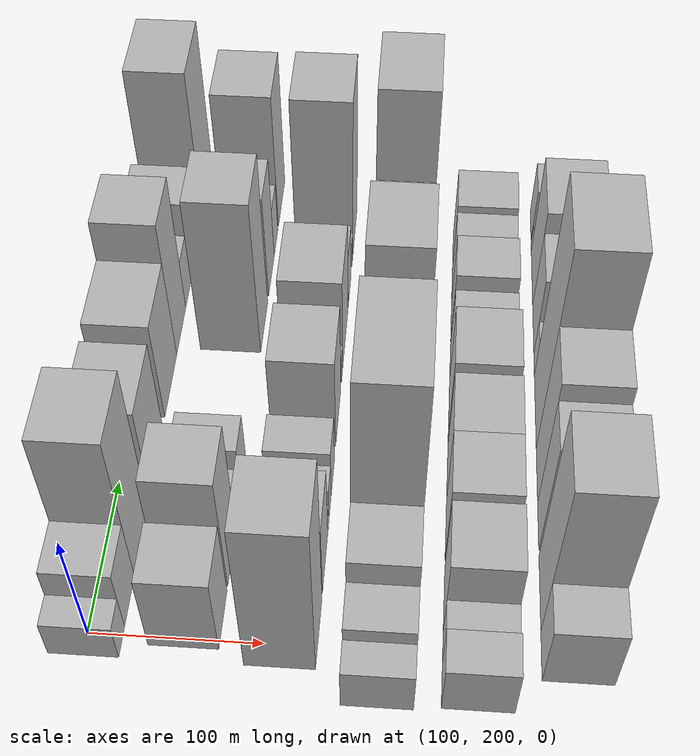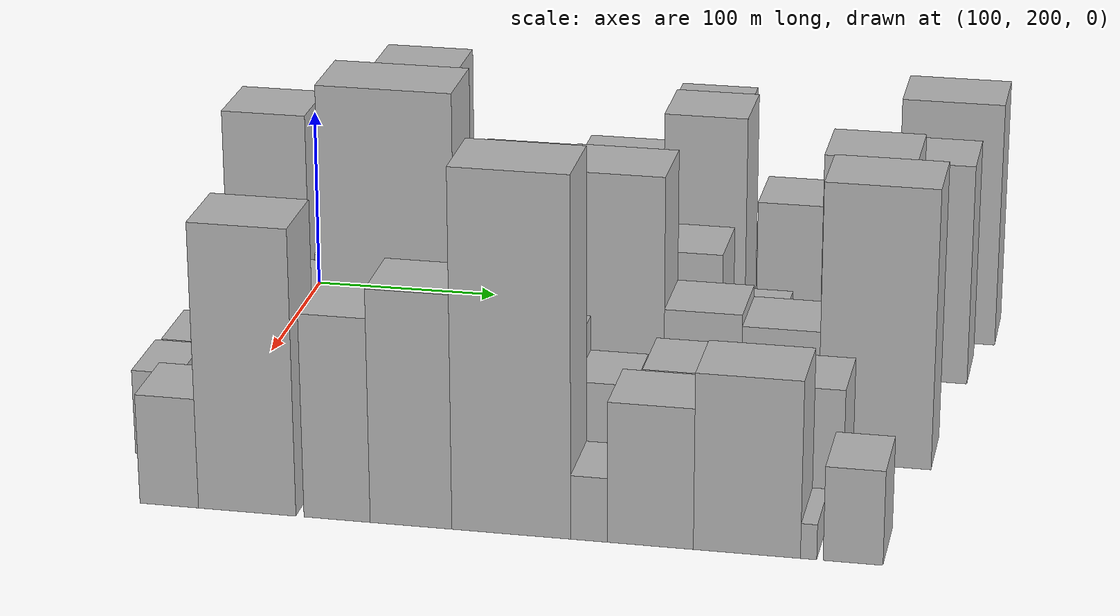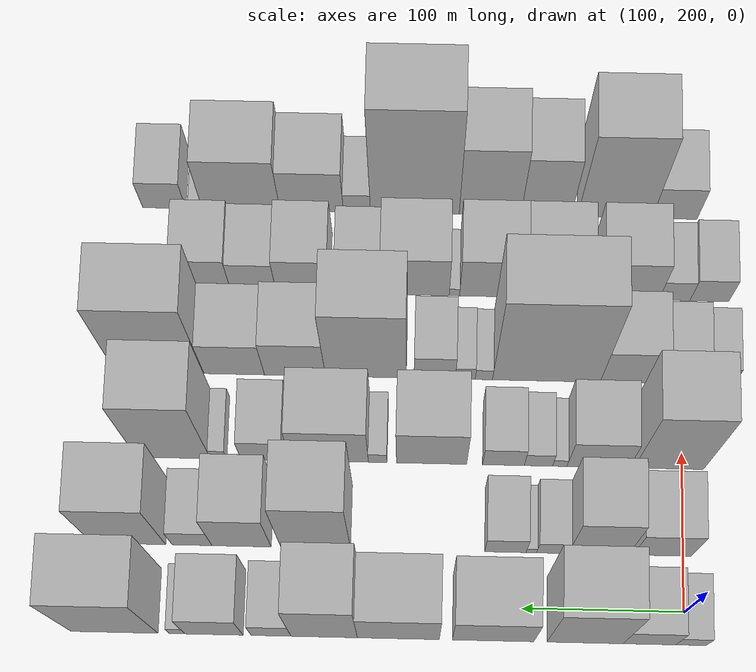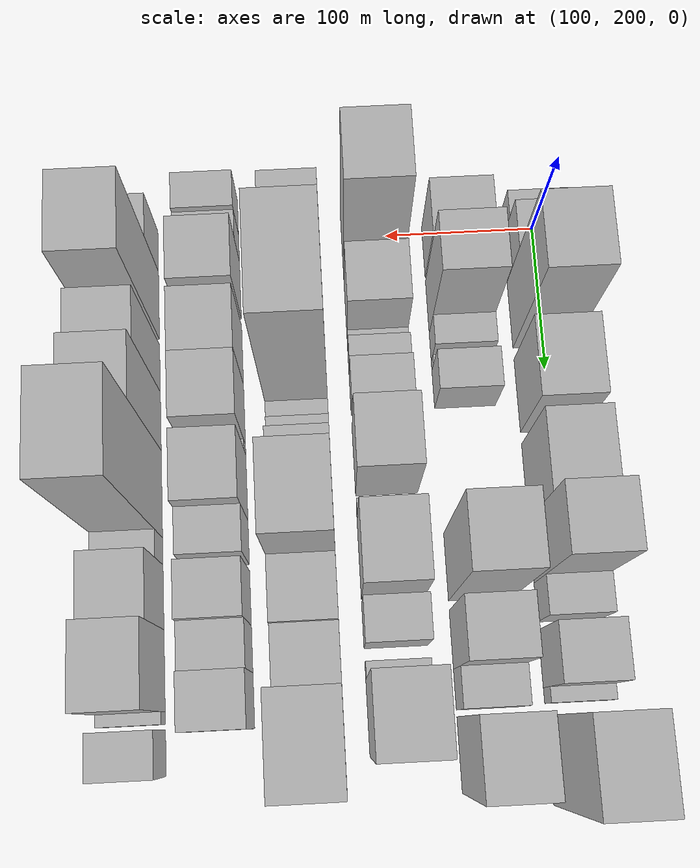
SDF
<sdf version="1.6">
 <world name="default">
  <model name="building_29">
   <static>1</static>
   <pose>100.0000 195.7742 0 0.000000 0.000000 0.000000</pose>
   <link name="link">
    <pose>0 0 16.50 0 0 0</pose>
    <collision name="collision"><geometry><box><size>40.0000 18.7223 33.0000</size></box></geometry></collision>
    <visual name="visual">
     <cast_shadows>0</cast_shadows>
     <geometry><box><size>40.0000 18.7223 33.0000</size></box></geometry>
     <material>
      <script>
       <uri>model://HANNAS_wall/materials/scripts</uri>
       <uri>model://HANNAS_wall/materials/textures</uri>
       <name>vrc/HANNAS_wall</name>
      </script>
     </material>
    </visual>
   </link>
  </model>
  <model name="building_30">
   <static>1</static>
   <pose>100.0000 221.3169 0 0.000000 0.000000 0.000000</pose>
   <link name="link">
    <pose>0 0 28.50 0 0 0</pose>
    <collision name="collision"><geometry><box><size>40.0000 32.3630 57.0000</size></box></geometry></collision>
    <visual name="visual">
     <cast_shadows>0</cast_shadows>
     <geometry><box><size>40.0000 32.3630 57.0000</size></box></geometry>
     <material>
      <script>
       <uri>model://HANNAS_wall/materials/scripts</uri>
       <uri>model://HANNAS_wall/materials/textures</uri>
       <name>vrc/HANNAS_wall</name>
      </script>
     </material>
    </visual>
   </link>
  </model>
  <model name="building_31">
   <static>1</static>
   <pose>100.0000 260.9677 0 0.000000 0.000000 0.000000</pose>
   <link name="link">
    <pose>0 0 67.50 0 0 0</pose>
    <collision name="collision"><geometry><box><size>40.0000 46.9386 135.0000</size></box></geometry></collision>
    <visual name="visual">
     <cast_shadows>0</cast_shadows>
     <geometry><box><size>40.0000 46.9386 135.0000</size></box></geometry>
     <material>
      <script>
       <uri>model://HANNAS_wall/materials/scripts</uri>
       <uri>model://HANNAS_wall/materials/textures</uri>
       <name>vrc/HANNAS_wall</name>
      </script>
     </material>
    </visual>
   </link>
  </model>
  <model name="building_32">
   <static>1</static>
   <pose>100.0000 317.5003 0 0.000000 0.000000 0.000000</pose>
   <link name="link">
    <pose>0 0 42.00 0 0 0</pose>
    <collision name="collision"><geometry><box><size>40.0000 50.1265 84.0000</size></box></geometry></collision>
    <visual name="visual">
     <cast_shadows>0</cast_shadows>
     <geometry><box><size>40.0000 50.1265 84.0000</size></box></geometry>
     <material>
      <script>
       <uri>model://HANNAS_wall/materials/scripts</uri>
       <uri>model://HANNAS_wall/materials/textures</uri>
       <name>vrc/HANNAS_wall</name>
      </script>
     </material>
    </visual>
   </link>
  </model>
  <model name="building_33">
   <static>1</static>
   <pose>100.0000 375.7238 0 0.000000 0.000000 0.000000</pose>
   <link name="link">
    <pose>0 0 45.00 0 0 0</pose>
    <collision name="collision"><geometry><box><size>40.0000 50.3206 90.0000</size></box></geometry></collision>
    <visual name="visual">
     <cast_shadows>0</cast_shadows>
     <geometry><box><size>40.0000 50.3206 90.0000</size></box></geometry>
     <material>
      <script>
       <uri>model://HANNAS_wall/materials/scripts</uri>
       <uri>model://HANNAS_wall/materials/textures</uri>
       <name>vrc/HANNAS_wall</name>
      </script>
     </material>
    </visual>
   </link>
  </model>
  <model name="building_34">
   <static>1</static>
   <pose>100.0000 421.3314 0 0.000000 0.000000 0.000000</pose>
   <link name="link">
    <pose>0 0 61.50 0 0 0</pose>
    <collision name="collision"><geometry><box><size>40.0000 40.8947 123.0000</size></box></geometry></collision>
    <visual name="visual">
     <cast_shadows>0</cast_shadows>
     <geometry><box><size>40.0000 40.8947 123.0000</size></box></geometry>
     <material>
      <script>
       <uri>model://HANNAS_wall/materials/scripts</uri>
       <uri>model://HANNAS_wall/materials/textures</uri>
       <name>vrc/HANNAS_wall</name>
      </script>
     </material>
    </visual>
   </link>
  </model>
  <model name="building_35">
   <static>1</static>
   <pose>100.0000 454.0095 0 0.000000 0.000000 0.000000</pose>
   <link name="link">
    <pose>0 0 22.50 0 0 0</pose>
    <collision name="collision"><geometry><box><size>40.0000 24.4614 45.0000</size></box></geometry></collision>
    <visual name="visual">
     <cast_shadows>0</cast_shadows>
     <geometry><box><size>40.0000 24.4614 45.0000</size></box></geometry>
     <material>
      <script>
       <uri>model://HANNAS_wall/materials/scripts</uri>
       <uri>model://HANNAS_wall/materials/textures</uri>
       <name>vrc/HANNAS_wall</name>
      </script>
     </material>
    </visual>
   </link>
  </model>
  <model name="building_36">
   <static>1</static>
   <pose>100.0000 489.1352 0 0.000000 0.000000 0.000000</pose>
   <link name="link">
    <pose>0 0 34.50 0 0 0</pose>
    <collision name="collision"><geometry><box><size>40.0000 35.7901 69.0000</size></box></geometry></collision>
    <visual name="visual">
     <cast_shadows>0</cast_shadows>
     <geometry><box><size>40.0000 35.7901 69.0000</size></box></geometry>
     <material>
      <script>
       <uri>model://HANNAS_wall/materials/scripts</uri>
       <uri>model://HANNAS_wall/materials/textures</uri>
       <name>vrc/HANNAS_wall</name>
      </script>
     </material>
    </visual>
   </link>
  </model>
  <model name="building_37">
   <static>1</static>
   <pose>100.0000 511.8533 0 0.000000 0.000000 0.000000</pose>
   <link name="link">
    <pose>0 0 12.00 0 0 0</pose>
    <collision name="collision"><geometry><box><size>40.0000 9.6461 24.0000</size></box></geometry></collision>
    <visual name="visual">
     <cast_shadows>0</cast_shadows>
     <geometry><box><size>40.0000 9.6461 24.0000</size></box></geometry>
     <material>
      <script>
       <uri>model://HANNAS_wall/materials/scripts</uri>
       <uri>model://HANNAS_wall/materials/textures</uri>
       <name>vrc/HANNAS_wall</name>
      </script>
     </material>
    </visual>
   </link>
  </model>
  <model name="building_38">
   <static>1</static>
   <pose>100.0000 550.4825 0 0.000000 0.000000 0.000000</pose>
   <link name="link">
    <pose>0 0 67.50 0 0 0</pose>
    <collision name="collision"><geometry><box><size>40.0000 53.6122 135.0000</size></box></geometry></collision>
    <visual name="visual">
     <cast_shadows>0</cast_shadows>
     <geometry><box><size>40.0000 53.6122 135.0000</size></box></geometry>
     <material>
      <script>
       <uri>model://HANNAS_wall/materials/scripts</uri>
       <uri>model://HANNAS_wall/materials/textures</uri>
       <name>vrc/HANNAS_wall</name>
      </script>
     </material>
    </visual>
   </link>
  </model>
  <model name="building_78">
   <static>1</static>
   <pose>155.0000 213.0951 0 0.000000 0.000000 0.000000</pose>
   <link name="link">
    <pose>0 0 36.00 0 0 0</pose>
    <collision name="collision"><geometry><box><size>40.0000 36.3385 72.0000</size></box></geometry></collision>
    <visual name="visual">
     <cast_shadows>0</cast_shadows>
     <geometry><box><size>40.0000 36.3385 72.0000</size></box></geometry>
     <material>
      <script>
       <uri>model://HANNAS_wall/materials/scripts</uri>
       <uri>model://HANNAS_wall/materials/textures</uri>
       <name>vrc/HANNAS_wall</name>
      </script>
     </material>
    </visual>
   </link>
  </model>
  <model name="building_79">
   <static>1</static>
   <pose>155.0000 252.8944 0 0.000000 0.000000 0.000000</pose>
   <link name="link">
    <pose>0 0 54.00 0 0 0</pose>
    <collision name="collision"><geometry><box><size>40.0000 37.2600 108.0000</size></box></geometry></collision>
    <visual name="visual">
     <cast_shadows>0</cast_shadows>
     <geometry><box><size>40.0000 37.2600 108.0000</size></box></geometry>
     <material>
      <script>
       <uri>model://HANNAS_wall/materials/scripts</uri>
       <uri>model://HANNAS_wall/materials/textures</uri>
       <name>vrc/HANNAS_wall</name>
      </script>
     </material>
    </visual>
   </link>
  </model>
  <model name="building_80">
   <static>1</static>
   <pose>155.0000 281.3751 0 0.000000 0.000000 0.000000</pose>
   <link name="link">
    <pose>0 0 18.00 0 0 0</pose>
    <collision name="collision"><geometry><box><size>40.0000 19.7014 36.0000</size></box></geometry></collision>
    <visual name="visual">
     <cast_shadows>0</cast_shadows>
     <geometry><box><size>40.0000 19.7014 36.0000</size></box></geometry>
     <material>
      <script>
       <uri>model://HANNAS_wall/materials/scripts</uri>
       <uri>model://HANNAS_wall/materials/textures</uri>
       <name>vrc/HANNAS_wall</name>
      </script>
     </material>
    </visual>
   </link>
  </model>
  <model name="building_81">
   <static>1</static>
   <pose>155.0000 294.4615 0 0.000000 0.000000 0.000000</pose>
   <link name="link">
    <pose>0 0 7.50 0 0 0</pose>
    <collision name="collision"><geometry><box><size>40.0000 6.4715 15.0000</size></box></geometry></collision>
    <visual name="visual">
     <cast_shadows>0</cast_shadows>
     <geometry><box><size>40.0000 6.4715 15.0000</size></box></geometry>
     <material>
      <script>
       <uri>model://HANNAS_wall/materials/scripts</uri>
       <uri>model://HANNAS_wall/materials/textures</uri>
       <name>vrc/HANNAS_wall</name>
      </script>
     </material>
    </visual>
   </link>
  </model>
  <model name="building_82">
   <static>1</static>
   <pose>155.0000 310.5531 0 0.000000 0.000000 0.000000</pose>
   <link name="link">
    <pose>0 0 22.50 0 0 0</pose>
    <collision name="collision"><geometry><box><size>40.0000 25.7117 45.0000</size></box></geometry></collision>
    <visual name="visual">
     <cast_shadows>0</cast_shadows>
     <geometry><box><size>40.0000 25.7117 45.0000</size></box></geometry>
     <material>
      <script>
       <uri>model://HANNAS_wall/materials/scripts</uri>
       <uri>model://HANNAS_wall/materials/textures</uri>
       <name>vrc/HANNAS_wall</name>
      </script>
     </material>
    </visual>
   </link>
  </model>
  <model name="building_83">
   <static>1</static>
   <pose>155.0000 428.4507 0 0.000000 0.000000 0.000000</pose>
   <link name="link">
    <pose>0 0 69.00 0 0 0</pose>
    <collision name="collision"><geometry><box><size>40.0000 43.3612 138.0000</size></box></geometry></collision>
    <visual name="visual">
     <cast_shadows>0</cast_shadows>
     <geometry><box><size>40.0000 43.3612 138.0000</size></box></geometry>
     <material>
      <script>
       <uri>model://HANNAS_wall/materials/scripts</uri>
       <uri>model://HANNAS_wall/materials/textures</uri>
       <name>vrc/HANNAS_wall</name>
      </script>
     </material>
    </visual>
   </link>
  </model>
  <model name="building_84">
   <static>1</static>
   <pose>155.0000 474.5398 0 0.000000 0.000000 0.000000</pose>
   <link name="link">
    <pose>0 0 46.50 0 0 0</pose>
    <collision name="collision"><geometry><box><size>40.0000 36.8170 93.0000</size></box></geometry></collision>
    <visual name="visual">
     <cast_shadows>0</cast_shadows>
     <geometry><box><size>40.0000 36.8170 93.0000</size></box></geometry>
     <material>
      <script>
       <uri>model://HANNAS_wall/materials/scripts</uri>
       <uri>model://HANNAS_wall/materials/textures</uri>
       <name>vrc/HANNAS_wall</name>
      </script>
     </material>
    </visual>
   </link>
  </model>
  <model name="building_85">
   <static>1</static>
   <pose>155.0000 505.3583 0 0.000000 0.000000 0.000000</pose>
   <link name="link">
    <pose>0 0 22.50 0 0 0</pose>
    <collision name="collision"><geometry><box><size>40.0000 24.8200 45.0000</size></box></geometry></collision>
    <visual name="visual">
     <cast_shadows>0</cast_shadows>
     <geometry><box><size>40.0000 24.8200 45.0000</size></box></geometry>
     <material>
      <script>
       <uri>model://HANNAS_wall/materials/scripts</uri>
       <uri>model://HANNAS_wall/materials/textures</uri>
       <name>vrc/HANNAS_wall</name>
      </script>
     </material>
    </visual>
   </link>
  </model>
  <model name="building_86">
   <static>1</static>
   <pose>155.0000 544.6036 0 0.000000 0.000000 0.000000</pose>
   <link name="link">
    <pose>0 0 60.00 0 0 0</pose>
    <collision name="collision"><geometry><box><size>40.0000 45.6705 120.0000</size></box></geometry></collision>
    <visual name="visual">
     <cast_shadows>0</cast_shadows>
     <geometry><box><size>40.0000 45.6705 120.0000</size></box></geometry>
     <material>
      <script>
       <uri>model://HANNAS_wall/materials/scripts</uri>
       <uri>model://HANNAS_wall/materials/textures</uri>
       <name>vrc/HANNAS_wall</name>
      </script>
     </material>
    </visual>
   </link>
  </model>
  <model name="building_129">
   <static>1</static>
   <pose>210.0000 208.4564 0 0.000000 0.000000 0.000000</pose>
   <link name="link">
    <pose>0 0 72.00 0 0 0</pose>
    <collision name="collision"><geometry><box><size>40.0000 43.8304 144.0000</size></box></geometry></collision>
    <visual name="visual">
     <cast_shadows>0</cast_shadows>
     <geometry><box><size>40.0000 43.8304 144.0000</size></box></geometry>
     <material>
      <script>
       <uri>model://HANNAS_wall/materials/scripts</uri>
       <uri>model://HANNAS_wall/materials/textures</uri>
       <name>vrc/HANNAS_wall</name>
      </script>
     </material>
    </visual>
   </link>
  </model>
  <model name="building_130">
   <static>1</static>
   <pose>210.0000 252.9038 0 0.000000 0.000000 0.000000</pose>
   <link name="link">
    <pose>0 0 34.50 0 0 0</pose>
    <collision name="collision"><geometry><box><size>40.0000 39.0645 69.0000</size></box></geometry></collision>
    <visual name="visual">
     <cast_shadows>0</cast_shadows>
     <geometry><box><size>40.0000 39.0645 69.0000</size></box></geometry>
     <material>
      <script>
       <uri>model://HANNAS_wall/materials/scripts</uri>
       <uri>model://HANNAS_wall/materials/textures</uri>
       <name>vrc/HANNAS_wall</name>
      </script>
     </material>
    </visual>
   </link>
  </model>
  <model name="building_131">
   <static>1</static>
   <pose>210.0000 276.9353 0 0.000000 0.000000 0.000000</pose>
   <link name="link">
    <pose>0 0 9.00 0 0 0</pose>
    <collision name="collision"><geometry><box><size>40.0000 8.9984 18.0000</size></box></geometry></collision>
    <visual name="visual">
     <cast_shadows>0</cast_shadows>
     <geometry><box><size>40.0000 8.9984 18.0000</size></box></geometry>
     <material>
      <script>
       <uri>model://HANNAS_wall/materials/scripts</uri>
       <uri>model://HANNAS_wall/materials/textures</uri>
       <name>vrc/HANNAS_wall</name>
      </script>
     </material>
    </visual>
   </link>
  </model>
  <model name="building_132">
   <static>1</static>
   <pose>210.0000 290.3358 0 0.000000 0.000000 0.000000</pose>
   <link name="link">
    <pose>0 0 16.50 0 0 0</pose>
    <collision name="collision"><geometry><box><size>40.0000 17.8025 33.0000</size></box></geometry></collision>
    <visual name="visual">
     <cast_shadows>0</cast_shadows>
     <geometry><box><size>40.0000 17.8025 33.0000</size></box></geometry>
     <material>
      <script>
       <uri>model://HANNAS_wall/materials/scripts</uri>
       <uri>model://HANNAS_wall/materials/textures</uri>
       <name>vrc/HANNAS_wall</name>
      </script>
     </material>
    </visual>
   </link>
  </model>
  <model name="building_133">
   <static>1</static>
   <pose>210.0000 312.3384 0 0.000000 0.000000 0.000000</pose>
   <link name="link">
    <pose>0 0 22.50 0 0 0</pose>
    <collision name="collision"><geometry><box><size>40.0000 26.2027 45.0000</size></box></geometry></collision>
    <visual name="visual">
     <cast_shadows>0</cast_shadows>
     <geometry><box><size>40.0000 26.2027 45.0000</size></box></geometry>
     <material>
      <script>
       <uri>model://HANNAS_wall/materials/scripts</uri>
       <uri>model://HANNAS_wall/materials/textures</uri>
       <name>vrc/HANNAS_wall</name>
      </script>
     </material>
    </visual>
   </link>
  </model>
  <model name="building_134">
   <static>1</static>
   <pose>210.0000 357.4520 0 0.000000 0.000000 0.000000</pose>
   <link name="link">
    <pose>0 0 42.00 0 0 0</pose>
    <collision name="collision"><geometry><box><size>40.0000 44.0245 84.0000</size></box></geometry></collision>
    <visual name="visual">
     <cast_shadows>0</cast_shadows>
     <geometry><box><size>40.0000 44.0245 84.0000</size></box></geometry>
     <material>
      <script>
       <uri>model://HANNAS_wall/materials/scripts</uri>
       <uri>model://HANNAS_wall/materials/textures</uri>
       <name>vrc/HANNAS_wall</name>
      </script>
     </material>
    </visual>
   </link>
  </model>
  <model name="building_135">
   <static>1</static>
   <pose>210.0000 391.3116 0 0.000000 0.000000 0.000000</pose>
   <link name="link">
    <pose>0 0 12.00 0 0 0</pose>
    <collision name="collision"><geometry><box><size>40.0000 11.6946 24.0000</size></box></geometry></collision>
    <visual name="visual">
     <cast_shadows>0</cast_shadows>
     <geometry><box><size>40.0000 11.6946 24.0000</size></box></geometry>
     <material>
      <script>
       <uri>model://HANNAS_wall/materials/scripts</uri>
       <uri>model://HANNAS_wall/materials/textures</uri>
       <name>vrc/HANNAS_wall</name>
      </script>
     </material>
    </visual>
   </link>
  </model>
  <model name="building_136">
   <static>1</static>
   <pose>210.0000 421.7653 0 0.000000 0.000000 0.000000</pose>
   <link name="link">
    <pose>0 0 42.00 0 0 0</pose>
    <collision name="collision"><geometry><box><size>40.0000 49.2128 84.0000</size></box></geometry></collision>
    <visual name="visual">
     <cast_shadows>0</cast_shadows>
     <geometry><box><size>40.0000 49.2128 84.0000</size></box></geometry>
     <material>
      <script>
       <uri>model://HANNAS_wall/materials/scripts</uri>
       <uri>model://HANNAS_wall/materials/textures</uri>
       <name>vrc/HANNAS_wall</name>
      </script>
     </material>
    </visual>
   </link>
  </model>
  <model name="building_137">
   <static>1</static>
   <pose>210.0000 463.3114 0 0.000000 0.000000 0.000000</pose>
   <link name="link">
    <pose>0 0 25.50 0 0 0</pose>
    <collision name="collision"><geometry><box><size>40.0000 27.8794 51.0000</size></box></geometry></collision>
    <visual name="visual">
     <cast_shadows>0</cast_shadows>
     <geometry><box><size>40.0000 27.8794 51.0000</size></box></geometry>
     <material>
      <script>
       <uri>model://HANNAS_wall/materials/scripts</uri>
       <uri>model://HANNAS_wall/materials/textures</uri>
       <name>vrc/HANNAS_wall</name>
      </script>
     </material>
    </visual>
   </link>
  </model>
  <model name="building_138">
   <static>1</static>
   <pose>210.0000 491.3825 0 0.000000 0.000000 0.000000</pose>
   <link name="link">
    <pose>0 0 12.00 0 0 0</pose>
    <collision name="collision"><geometry><box><size>40.0000 10.2628 24.0000</size></box></geometry></collision>
    <visual name="visual">
     <cast_shadows>0</cast_shadows>
     <geometry><box><size>40.0000 10.2628 24.0000</size></box></geometry>
     <material>
      <script>
       <uri>model://HANNAS_wall/materials/scripts</uri>
       <uri>model://HANNAS_wall/materials/textures</uri>
       <name>vrc/HANNAS_wall</name>
      </script>
     </material>
    </visual>
   </link>
  </model>
  <model name="building_139">
   <static>1</static>
   <pose>210.0000 519.7891 0 0.000000 0.000000 0.000000</pose>
   <link name="link">
    <pose>0 0 70.50 0 0 0</pose>
    <collision name="collision"><geometry><box><size>40.0000 46.5502 141.0000</size></box></geometry></collision>
    <visual name="visual">
     <cast_shadows>0</cast_shadows>
     <geometry><box><size>40.0000 46.5502 141.0000</size></box></geometry>
     <material>
      <script>
       <uri>model://HANNAS_wall/materials/scripts</uri>
       <uri>model://HANNAS_wall/materials/textures</uri>
       <name>vrc/HANNAS_wall</name>
      </script>
     </material>
    </visual>
   </link>
  </model>
  <model name="building_185">
   <static>1</static>
   <pose>265.0000 176.6746 0 0.000000 0.000000 0.000000</pose>
   <link name="link">
    <pose>0 0 19.50 0 0 0</pose>
    <collision name="collision"><geometry><box><size>40.0000 19.6186 39.0000</size></box></geometry></collision>
    <visual name="visual">
     <cast_shadows>0</cast_shadows>
     <geometry><box><size>40.0000 19.6186 39.0000</size></box></geometry>
     <material>
      <script>
       <uri>model://HANNAS_wall/materials/scripts</uri>
       <uri>model://HANNAS_wall/materials/textures</uri>
       <name>vrc/HANNAS_wall</name>
      </script>
     </material>
    </visual>
   </link>
  </model>
  <model name="building_186">
   <static>1</static>
   <pose>265.0000 200.3702 0 0.000000 0.000000 0.000000</pose>
   <link name="link">
    <pose>0 0 25.50 0 0 0</pose>
    <collision name="collision"><geometry><box><size>40.0000 27.7725 51.0000</size></box></geometry></collision>
    <visual name="visual">
     <cast_shadows>0</cast_shadows>
     <geometry><box><size>40.0000 27.7725 51.0000</size></box></geometry>
     <material>
      <script>
       <uri>model://HANNAS_wall/materials/scripts</uri>
       <uri>model://HANNAS_wall/materials/textures</uri>
       <name>vrc/HANNAS_wall</name>
      </script>
     </material>
    </visual>
   </link>
  </model>
  <model name="building_187">
   <static>1</static>
   <pose>265.0000 232.8206 0 0.000000 0.000000 0.000000</pose>
   <link name="link">
    <pose>0 0 36.00 0 0 0</pose>
    <collision name="collision"><geometry><box><size>40.0000 37.1284 72.0000</size></box></geometry></collision>
    <visual name="visual">
     <cast_shadows>0</cast_shadows>
     <geometry><box><size>40.0000 37.1284 72.0000</size></box></geometry>
     <material>
      <script>
       <uri>model://HANNAS_wall/materials/scripts</uri>
       <uri>model://HANNAS_wall/materials/textures</uri>
       <name>vrc/HANNAS_wall</name>
      </script>
     </material>
    </visual>
   </link>
  </model>
  <model name="building_188">
   <static>1</static>
   <pose>265.0000 285.6223 0 0.000000 0.000000 0.000000</pose>
   <link name="link">
    <pose>0 0 90.00 0 0 0</pose>
    <collision name="collision"><geometry><box><size>40.0000 68.4750 180.0000</size></box></geometry></collision>
    <visual name="visual">
     <cast_shadows>0</cast_shadows>
     <geometry><box><size>40.0000 68.4750 180.0000</size></box></geometry>
     <material>
      <script>
       <uri>model://HANNAS_wall/materials/scripts</uri>
       <uri>model://HANNAS_wall/materials/textures</uri>
       <name>vrc/HANNAS_wall</name>
      </script>
     </material>
    </visual>
   </link>
  </model>
  <model name="building_189">
   <static>1</static>
   <pose>265.0000 325.3463 0 0.000000 0.000000 0.000000</pose>
   <link name="link">
    <pose>0 0 12.00 0 0 0</pose>
    <collision name="collision"><geometry><box><size>40.0000 10.9732 24.0000</size></box></geometry></collision>
    <visual name="visual">
     <cast_shadows>0</cast_shadows>
     <geometry><box><size>40.0000 10.9732 24.0000</size></box></geometry>
     <material>
      <script>
       <uri>model://HANNAS_wall/materials/scripts</uri>
       <uri>model://HANNAS_wall/materials/textures</uri>
       <name>vrc/HANNAS_wall</name>
      </script>
     </material>
    </visual>
   </link>
  </model>
  <model name="building_190">
   <static>1</static>
   <pose>265.0000 337.1159 0 0.000000 0.000000 0.000000</pose>
   <link name="link">
    <pose>0 0 13.50 0 0 0</pose>
    <collision name="collision"><geometry><box><size>40.0000 12.5660 27.0000</size></box></geometry></collision>
    <visual name="visual">
     <cast_shadows>0</cast_shadows>
     <geometry><box><size>40.0000 12.5660 27.0000</size></box></geometry>
     <material>
      <script>
       <uri>model://HANNAS_wall/materials/scripts</uri>
       <uri>model://HANNAS_wall/materials/textures</uri>
       <name>vrc/HANNAS_wall</name>
      </script>
     </material>
    </visual>
   </link>
  </model>
  <model name="building_191">
   <static>1</static>
   <pose>265.0000 356.5166 0 0.000000 0.000000 0.000000</pose>
   <link name="link">
    <pose>0 0 25.50 0 0 0</pose>
    <collision name="collision"><geometry><box><size>40.0000 26.2353 51.0000</size></box></geometry></collision>
    <visual name="visual">
     <cast_shadows>0</cast_shadows>
     <geometry><box><size>40.0000 26.2353 51.0000</size></box></geometry>
     <material>
      <script>
       <uri>model://HANNAS_wall/materials/scripts</uri>
       <uri>model://HANNAS_wall/materials/textures</uri>
       <name>vrc/HANNAS_wall</name>
      </script>
     </material>
    </visual>
   </link>
  </model>
  <model name="building_192">
   <static>1</static>
   <pose>265.0000 400.2661 0 0.000000 0.000000 0.000000</pose>
   <link name="link">
    <pose>0 0 72.00 0 0 0</pose>
    <collision name="collision"><geometry><box><size>40.0000 51.2637 144.0000</size></box></geometry></collision>
    <visual name="visual">
     <cast_shadows>0</cast_shadows>
     <geometry><box><size>40.0000 51.2637 144.0000</size></box></geometry>
     <material>
      <script>
       <uri>model://HANNAS_wall/materials/scripts</uri>
       <uri>model://HANNAS_wall/materials/textures</uri>
       <name>vrc/HANNAS_wall</name>
      </script>
     </material>
    </visual>
   </link>
  </model>
  <model name="building_193">
   <static>1</static>
   <pose>265.0000 445.2948 0 0.000000 0.000000 0.000000</pose>
   <link name="link">
    <pose>0 0 37.50 0 0 0</pose>
    <collision name="collision"><geometry><box><size>40.0000 38.7938 75.0000</size></box></geometry></collision>
    <visual name="visual">
     <cast_shadows>0</cast_shadows>
     <geometry><box><size>40.0000 38.7938 75.0000</size></box></geometry>
     <material>
      <script>
       <uri>model://HANNAS_wall/materials/scripts</uri>
       <uri>model://HANNAS_wall/materials/textures</uri>
       <name>vrc/HANNAS_wall</name>
      </script>
     </material>
    </visual>
   </link>
  </model>
  <model name="building_194">
   <static>1</static>
   <pose>265.0000 483.9919 0 0.000000 0.000000 0.000000</pose>
   <link name="link">
    <pose>0 0 34.50 0 0 0</pose>
    <collision name="collision"><geometry><box><size>40.0000 38.6004 69.0000</size></box></geometry></collision>
    <visual name="visual">
     <cast_shadows>0</cast_shadows>
     <geometry><box><size>40.0000 38.6004 69.0000</size></box></geometry>
     <material>
      <script>
       <uri>model://HANNAS_wall/materials/scripts</uri>
       <uri>model://HANNAS_wall/materials/textures</uri>
       <name>vrc/HANNAS_wall</name>
      </script>
     </material>
    </visual>
   </link>
  </model>
  <model name="building_195">
   <static>1</static>
   <pose>265.0000 531.5102 0 0.000000 0.000000 0.000000</pose>
   <link name="link">
    <pose>0 0 73.50 0 0 0</pose>
    <collision name="collision"><geometry><box><size>40.0000 56.4363 147.0000</size></box></geometry></collision>
    <visual name="visual">
     <cast_shadows>0</cast_shadows>
     <geometry><box><size>40.0000 56.4363 147.0000</size></box></geometry>
     <material>
      <script>
       <uri>model://HANNAS_wall/materials/scripts</uri>
       <uri>model://HANNAS_wall/materials/textures</uri>
       <name>vrc/HANNAS_wall</name>
      </script>
     </material>
    </visual>
   </link>
  </model>
  <model name="building_239">
   <static>1</static>
   <pose>320.0000 181.2499 0 0.000000 0.000000 0.000000</pose>
   <link name="link">
    <pose>0 0 22.50 0 0 0</pose>
    <collision name="collision"><geometry><box><size>40.0000 24.9658 45.0000</size></box></geometry></collision>
    <visual name="visual">
     <cast_shadows>0</cast_shadows>
     <geometry><box><size>40.0000 24.9658 45.0000</size></box></geometry>
     <material>
      <script>
       <uri>model://HANNAS_wall/materials/scripts</uri>
       <uri>model://HANNAS_wall/materials/textures</uri>
       <name>vrc/HANNAS_wall</name>
      </script>
     </material>
    </visual>
   </link>
  </model>
  <model name="building_240">
   <static>1</static>
   <pose>320.0000 203.7017 0 0.000000 0.000000 0.000000</pose>
   <link name="link">
    <pose>0 0 19.50 0 0 0</pose>
    <collision name="collision"><geometry><box><size>40.0000 19.9379 39.0000</size></box></geometry></collision>
    <visual name="visual">
     <cast_shadows>0</cast_shadows>
     <geometry><box><size>40.0000 19.9379 39.0000</size></box></geometry>
     <material>
      <script>
       <uri>model://HANNAS_wall/materials/scripts</uri>
       <uri>model://HANNAS_wall/materials/textures</uri>
       <name>vrc/HANNAS_wall</name>
      </script>
     </material>
    </visual>
   </link>
  </model>
  <model name="building_241">
   <static>1</static>
   <pose>320.0000 234.1356 0 0.000000 0.000000 0.000000</pose>
   <link name="link">
    <pose>0 0 37.50 0 0 0</pose>
    <collision name="collision"><geometry><box><size>40.0000 40.9298 75.0000</size></box></geometry></collision>
    <visual name="visual">
     <cast_shadows>0</cast_shadows>
     <geometry><box><size>40.0000 40.9298 75.0000</size></box></geometry>
     <material>
      <script>
       <uri>model://HANNAS_wall/materials/scripts</uri>
       <uri>model://HANNAS_wall/materials/textures</uri>
       <name>vrc/HANNAS_wall</name>
      </script>
     </material>
    </visual>
   </link>
  </model>
  <model name="building_242">
   <static>1</static>
   <pose>320.0000 280.0270 0 0.000000 0.000000 0.000000</pose>
   <link name="link">
    <pose>0 0 37.50 0 0 0</pose>
    <collision name="collision"><geometry><box><size>40.0000 40.8530 75.0000</size></box></geometry></collision>
    <visual name="visual">
     <cast_shadows>0</cast_shadows>
     <geometry><box><size>40.0000 40.8530 75.0000</size></box></geometry>
     <material>
      <script>
       <uri>model://HANNAS_wall/materials/scripts</uri>
       <uri>model://HANNAS_wall/materials/textures</uri>
       <name>vrc/HANNAS_wall</name>
      </script>
     </material>
    </visual>
   </link>
  </model>
  <model name="building_243">
   <static>1</static>
   <pose>320.0000 321.0315 0 0.000000 0.000000 0.000000</pose>
   <link name="link">
    <pose>0 0 37.50 0 0 0</pose>
    <collision name="collision"><geometry><box><size>40.0000 41.1560 75.0000</size></box></geometry></collision>
    <visual name="visual">
     <cast_shadows>0</cast_shadows>
     <geometry><box><size>40.0000 41.1560 75.0000</size></box></geometry>
     <material>
      <script>
       <uri>model://HANNAS_wall/materials/scripts</uri>
       <uri>model://HANNAS_wall/materials/textures</uri>
       <name>vrc/HANNAS_wall</name>
      </script>
     </material>
    </visual>
   </link>
  </model>
  <model name="building_244">
   <static>1</static>
   <pose>320.0000 344.9367 0 0.000000 0.000000 0.000000</pose>
   <link name="link">
    <pose>0 0 7.50 0 0 0</pose>
    <collision name="collision"><geometry><box><size>40.0000 6.6542 15.0000</size></box></geometry></collision>
    <visual name="visual">
     <cast_shadows>0</cast_shadows>
     <geometry><box><size>40.0000 6.6542 15.0000</size></box></geometry>
     <material>
      <script>
       <uri>model://HANNAS_wall/materials/scripts</uri>
       <uri>model://HANNAS_wall/materials/textures</uri>
       <name>vrc/HANNAS_wall</name>
      </script>
     </material>
    </visual>
   </link>
  </model>
  <model name="building_245">
   <static>1</static>
   <pose>320.0000 370.1032 0 0.000000 0.000000 0.000000</pose>
   <link name="link">
    <pose>0 0 37.50 0 0 0</pose>
    <collision name="collision"><geometry><box><size>40.0000 43.6788 75.0000</size></box></geometry></collision>
    <visual name="visual">
     <cast_shadows>0</cast_shadows>
     <geometry><box><size>40.0000 43.6788 75.0000</size></box></geometry>
     <material>
      <script>
       <uri>model://HANNAS_wall/materials/scripts</uri>
       <uri>model://HANNAS_wall/materials/textures</uri>
       <name>vrc/HANNAS_wall</name>
      </script>
     </material>
    </visual>
   </link>
  </model>
  <model name="building_246">
   <static>1</static>
   <pose>320.0000 406.3037 0 0.000000 0.000000 0.000000</pose>
   <link name="link">
    <pose>0 0 28.50 0 0 0</pose>
    <collision name="collision"><geometry><box><size>40.0000 28.7222 57.0000</size></box></geometry></collision>
    <visual name="visual">
     <cast_shadows>0</cast_shadows>
     <geometry><box><size>40.0000 28.7222 57.0000</size></box></geometry>
     <material>
      <script>
       <uri>model://HANNAS_wall/materials/scripts</uri>
       <uri>model://HANNAS_wall/materials/textures</uri>
       <name>vrc/HANNAS_wall</name>
      </script>
     </material>
    </visual>
   </link>
  </model>
  <model name="building_247">
   <static>1</static>
   <pose>320.0000 441.9901 0 0.000000 0.000000 0.000000</pose>
   <link name="link">
    <pose>0 0 33.00 0 0 0</pose>
    <collision name="collision"><geometry><box><size>40.0000 34.6505 66.0000</size></box></geometry></collision>
    <visual name="visual">
     <cast_shadows>0</cast_shadows>
     <geometry><box><size>40.0000 34.6505 66.0000</size></box></geometry>
     <material>
      <script>
       <uri>model://HANNAS_wall/materials/scripts</uri>
       <uri>model://HANNAS_wall/materials/textures</uri>
       <name>vrc/HANNAS_wall</name>
      </script>
     </material>
    </visual>
   </link>
  </model>
  <model name="building_248">
   <static>1</static>
   <pose>320.0000 473.9143 0 0.000000 0.000000 0.000000</pose>
   <link name="link">
    <pose>0 0 28.50 0 0 0</pose>
    <collision name="collision"><geometry><box><size>40.0000 29.1979 57.0000</size></box></geometry></collision>
    <visual name="visual">
     <cast_shadows>0</cast_shadows>
     <geometry><box><size>40.0000 29.1979 57.0000</size></box></geometry>
     <material>
      <script>
       <uri>model://HANNAS_wall/materials/scripts</uri>
       <uri>model://HANNAS_wall/materials/textures</uri>
       <name>vrc/HANNAS_wall</name>
      </script>
     </material>
    </visual>
   </link>
  </model>
  <model name="building_249">
   <static>1</static>
   <pose>320.0000 505.5882 0 0.000000 0.000000 0.000000</pose>
   <link name="link">
    <pose>0 0 31.50 0 0 0</pose>
    <collision name="collision"><geometry><box><size>40.0000 34.1500 63.0000</size></box></geometry></collision>
    <visual name="visual">
     <cast_shadows>0</cast_shadows>
     <geometry><box><size>40.0000 34.1500 63.0000</size></box></geometry>
     <material>
      <script>
       <uri>model://HANNAS_wall/materials/scripts</uri>
       <uri>model://HANNAS_wall/materials/textures</uri>
       <name>vrc/HANNAS_wall</name>
      </script>
     </material>
    </visual>
   </link>
  </model>
  <model name="building_289">
   <static>1</static>
   <pose>375.0000 203.0414 0 0.000000 0.000000 0.000000</pose>
   <link name="link">
    <pose>0 0 28.50 0 0 0</pose>
    <collision name="collision"><geometry><box><size>40.0000 29.3557 57.0000</size></box></geometry></collision>
    <visual name="visual">
     <cast_shadows>0</cast_shadows>
     <geometry><box><size>40.0000 29.3557 57.0000</size></box></geometry>
     <material>
      <script>
       <uri>model://HANNAS_wall/materials/scripts</uri>
       <uri>model://HANNAS_wall/materials/textures</uri>
       <name>vrc/HANNAS_wall</name>
      </script>
     </material>
    </visual>
   </link>
  </model>
  <model name="building_290">
   <static>1</static>
   <pose>375.0000 241.9331 0 0.000000 0.000000 0.000000</pose>
   <link name="link">
    <pose>0 0 73.50 0 0 0</pose>
    <collision name="collision"><geometry><box><size>40.0000 48.4278 147.0000</size></box></geometry></collision>
    <visual name="visual">
     <cast_shadows>0</cast_shadows>
     <geometry><box><size>40.0000 48.4278 147.0000</size></box></geometry>
     <material>
      <script>
       <uri>model://HANNAS_wall/materials/scripts</uri>
       <uri>model://HANNAS_wall/materials/textures</uri>
       <name>vrc/HANNAS_wall</name>
      </script>
     </material>
    </visual>
   </link>
  </model>
  <model name="building_291">
   <static>1</static>
   <pose>375.0000 286.4587 0 0.000000 0.000000 0.000000</pose>
   <link name="link">
    <pose>0 0 52.50 0 0 0</pose>
    <collision name="collision"><geometry><box><size>40.0000 32.6234 105.0000</size></box></geometry></collision>
    <visual name="visual">
     <cast_shadows>0</cast_shadows>
     <geometry><box><size>40.0000 32.6234 105.0000</size></box></geometry>
     <material>
      <script>
       <uri>model://HANNAS_wall/materials/scripts</uri>
       <uri>model://HANNAS_wall/materials/textures</uri>
       <name>vrc/HANNAS_wall</name>
      </script>
     </material>
    </visual>
   </link>
  </model>
  <model name="building_292">
   <static>1</static>
   <pose>375.0000 322.7556 0 0.000000 0.000000 0.000000</pose>
   <link name="link">
    <pose>0 0 60.00 0 0 0</pose>
    <collision name="collision"><geometry><box><size>40.0000 39.9704 120.0000</size></box></geometry></collision>
    <visual name="visual">
     <cast_shadows>0</cast_shadows>
     <geometry><box><size>40.0000 39.9704 120.0000</size></box></geometry>
     <material>
      <script>
       <uri>model://HANNAS_wall/materials/scripts</uri>
       <uri>model://HANNAS_wall/materials/textures</uri>
       <name>vrc/HANNAS_wall</name>
      </script>
     </material>
    </visual>
   </link>
  </model>
  <model name="building_293">
   <static>1</static>
   <pose>375.0000 371.5046 0 0.000000 0.000000 0.000000</pose>
   <link name="link">
    <pose>0 0 91.50 0 0 0</pose>
    <collision name="collision"><geometry><box><size>40.0000 57.5276 183.0000</size></box></geometry></collision>
    <visual name="visual">
     <cast_shadows>0</cast_shadows>
     <geometry><box><size>40.0000 57.5276 183.0000</size></box></geometry>
     <material>
      <script>
       <uri>model://HANNAS_wall/materials/scripts</uri>
       <uri>model://HANNAS_wall/materials/textures</uri>
       <name>vrc/HANNAS_wall</name>
      </script>
     </material>
    </visual>
   </link>
  </model>
  <model name="building_294">
   <static>1</static>
   <pose>375.0000 409.0509 0 0.000000 0.000000 0.000000</pose>
   <link name="link">
    <pose>0 0 16.50 0 0 0</pose>
    <collision name="collision"><geometry><box><size>40.0000 17.5650 33.0000</size></box></geometry></collision>
    <visual name="visual">
     <cast_shadows>0</cast_shadows>
     <geometry><box><size>40.0000 17.5650 33.0000</size></box></geometry>
     <material>
      <script>
       <uri>model://HANNAS_wall/materials/scripts</uri>
       <uri>model://HANNAS_wall/materials/textures</uri>
       <name>vrc/HANNAS_wall</name>
      </script>
     </material>
    </visual>
   </link>
  </model>
  <model name="building_295">
   <static>1</static>
   <pose>375.0000 438.4006 0 0.000000 0.000000 0.000000</pose>
   <link name="link">
    <pose>0 0 36.00 0 0 0</pose>
    <collision name="collision"><geometry><box><size>40.0000 41.1343 72.0000</size></box></geometry></collision>
    <visual name="visual">
     <cast_shadows>0</cast_shadows>
     <geometry><box><size>40.0000 41.1343 72.0000</size></box></geometry>
     <material>
      <script>
       <uri>model://HANNAS_wall/materials/scripts</uri>
       <uri>model://HANNAS_wall/materials/textures</uri>
       <name>vrc/HANNAS_wall</name>
      </script>
     </material>
    </visual>
   </link>
  </model>
  <model name="building_296">
   <static>1</static>
   <pose>375.0000 484.3058 0 0.000000 0.000000 0.000000</pose>
   <link name="link">
    <pose>0 0 45.00 0 0 0</pose>
    <collision name="collision"><geometry><box><size>40.0000 50.6760 90.0000</size></box></geometry></collision>
    <visual name="visual">
     <cast_shadows>0</cast_shadows>
     <geometry><box><size>40.0000 50.6760 90.0000</size></box></geometry>
     <material>
      <script>
       <uri>model://HANNAS_wall/materials/scripts</uri>
       <uri>model://HANNAS_wall/materials/textures</uri>
       <name>vrc/HANNAS_wall</name>
      </script>
     </material>
    </visual>
   </link>
  </model>
  <model name="building_297">
   <static>1</static>
   <pose>375.0000 513.4694 0 0.000000 0.000000 0.000000</pose>
   <link name="link">
    <pose>0 0 9.00 0 0 0</pose>
    <collision name="collision"><geometry><box><size>40.0000 7.6513 18.0000</size></box></geometry></collision>
    <visual name="visual">
     <cast_shadows>0</cast_shadows>
     <geometry><box><size>40.0000 7.6513 18.0000</size></box></geometry>
     <material>
      <script>
       <uri>model://HANNAS_wall/materials/scripts</uri>
       <uri>model://HANNAS_wall/materials/textures</uri>
       <name>vrc/HANNAS_wall</name>
      </script>
     </material>
    </visual>
   </link>
  </model>
  <model name="building_298">
   <static>1</static>
   <pose>375.0000 534.3186 0 0.000000 0.000000 0.000000</pose>
   <link name="link">
    <pose>0 0 24.00 0 0 0</pose>
    <collision name="collision"><geometry><box><size>40.0000 28.0470 48.0000</size></box></geometry></collision>
    <visual name="visual">
     <cast_shadows>0</cast_shadows>
     <geometry><box><size>40.0000 28.0470 48.0000</size></box></geometry>
     <material>
      <script>
       <uri>model://HANNAS_wall/materials/scripts</uri>
       <uri>model://HANNAS_wall/materials/textures</uri>
       <name>vrc/HANNAS_wall</name>
      </script>
     </material>
    </visual>
   </link>
  </model>
 </world>
</sdf>
